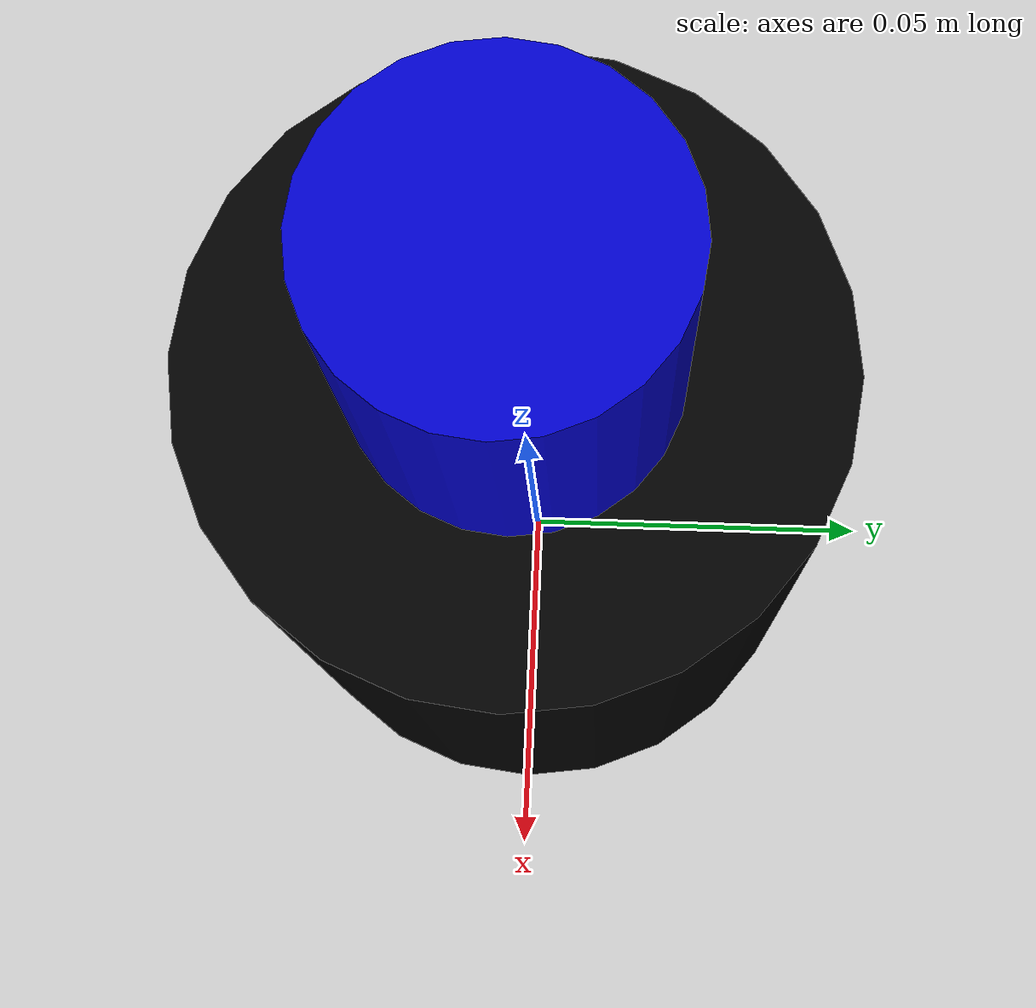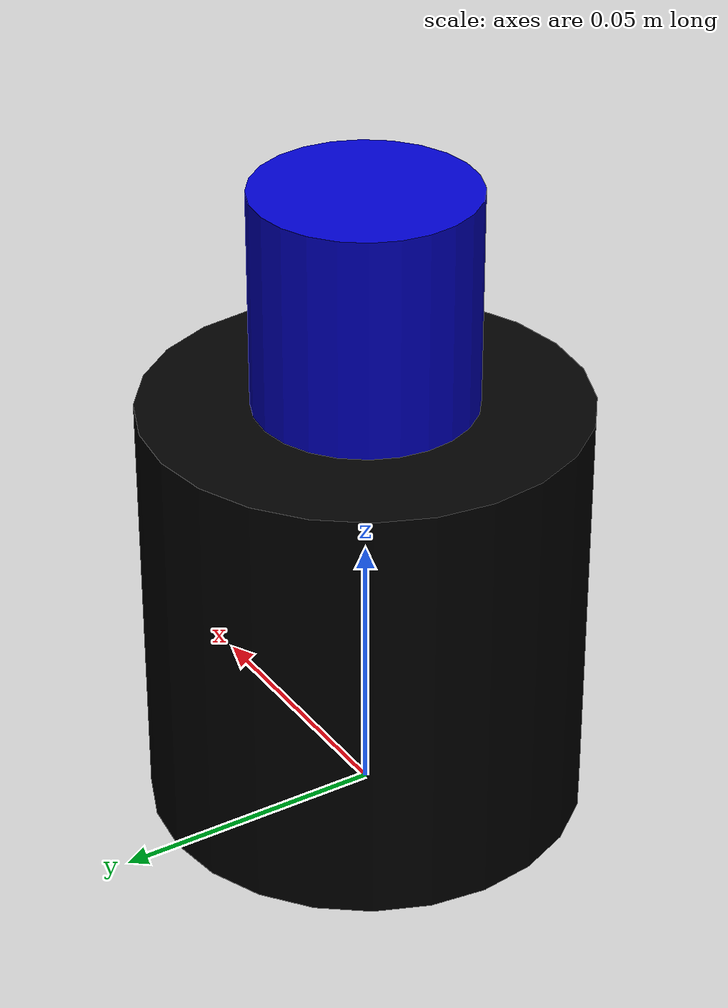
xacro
<?xml version="1.0"?>
<robot xmlns:xacro="http://www.ros.org/wiki/xacro" name="loader_motor">

    <!-- Constants -->
    <xacro:property name="PI" value="3.14159"/>

    <!-- Materials -->
    <material name="black">
        <color rgba="0.0 0.0 0.0 1.0"/>
    </material>
    <material name="blue">
        <color rgba="0.0 0.0 0.8 1.0"/>
    </material>

    <!-- Base Link -->
    <link name="world"/>

    <!-- Motor Mount Link -->
    <link name="motor_mount">
        <visual>
            <geometry>
                <cylinder radius="0.04" length="0.08"/>
            </geometry>
            <material name="black"/>
        </visual>
        <collision>
            <geometry>
                <cylinder radius="0.04" length="0.08"/>
            </geometry>
        </collision>
        <inertial>
            <mass value="0.5"/>
            <inertia ixx="0.001" ixy="0.0" ixz="0.0" iyy="0.001" iyz="0.0" izz="0.001"/>
        </inertial>
    </link>

    <!-- Motor Output Link -->
    <link name="loader_motor0">
        <visual>
            <geometry>
                <cylinder radius="0.02" length="0.04"/>
            </geometry>
            <material name="blue"/>
        </visual>
        <collision>
            <geometry>
                <cylinder radius="0.02" length="0.04"/>
            </geometry>
        </collision>
        <inertial>
            <mass value="0.2"/>
            <inertia ixx="0.0001" ixy="0.0" ixz="0.0" iyy="0.0001" iyz="0.0" izz="0.0001"/>
        </inertial>
    </link>

    <!-- Fixed Joint between World and Motor Mount -->
    <joint name="world_to_mount" type="fixed">
        <parent link="world"/>
        <child link="motor_mount"/>
        <origin xyz="0 0 0.04" rpy="0 0 0"/>
    </joint>

    <!-- Revolute Joint for Motor -->
    <joint name="loader_motor0" type="revolute">
        <parent link="motor_mount"/>
        <child link="loader_motor0"/>
        <origin xyz="0 0 0.06" rpy="0 0 0"/>
        <axis xyz="0 0 1"/>
        <limit lower="-${PI}" upper="${PI}" effort="1000" velocity="10"/>
    </joint>

    <ros2_control name="TideHardwareInterface" type="system">
        <hardware>
            <plugin>tide_hw_interface/TideHardwareInterface</plugin>
            <param name="need_calibration">false</param>
            <param name="can_device_count">1</param>
        </hardware>
        <joint name="loader_motor0">
            <param name="can_bus">can0</param>
            <param name="tx_id">5</param>
            <param name="offset">0.0</param>
            <param name="motor_type">M2006</param>

            <command_interface name="velocity"></command_interface>

            <state_interface name="position"/>
            <state_interface name="velocity"/>
            <state_interface name="effort"/>
        </joint>
    </ros2_control>

</robot>
